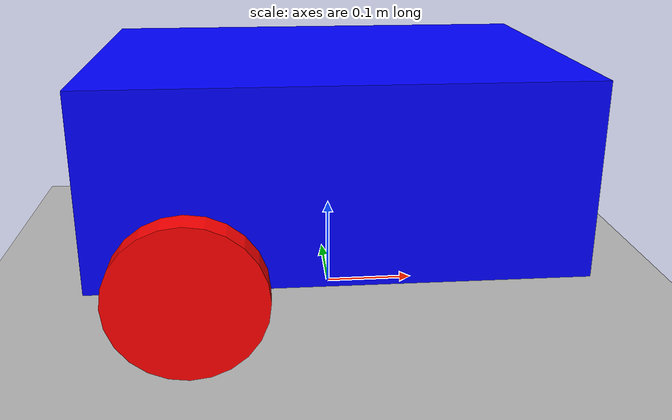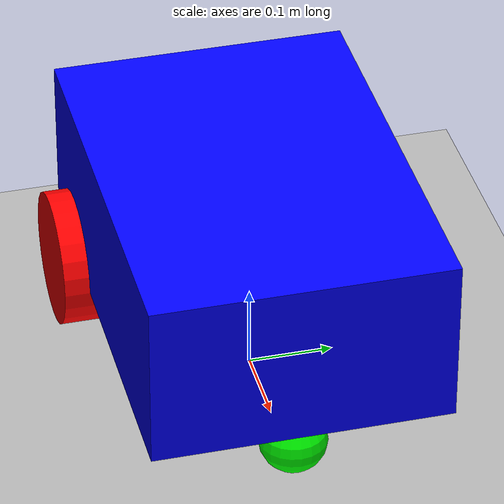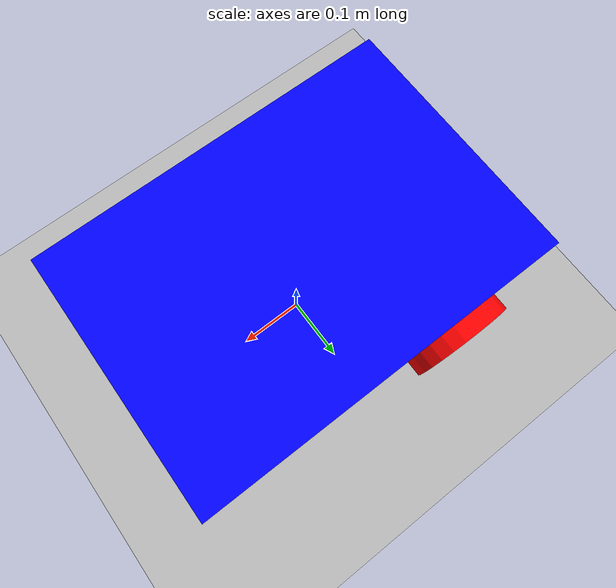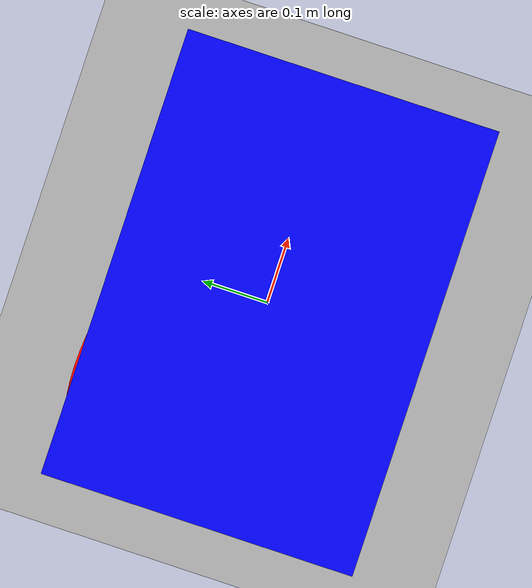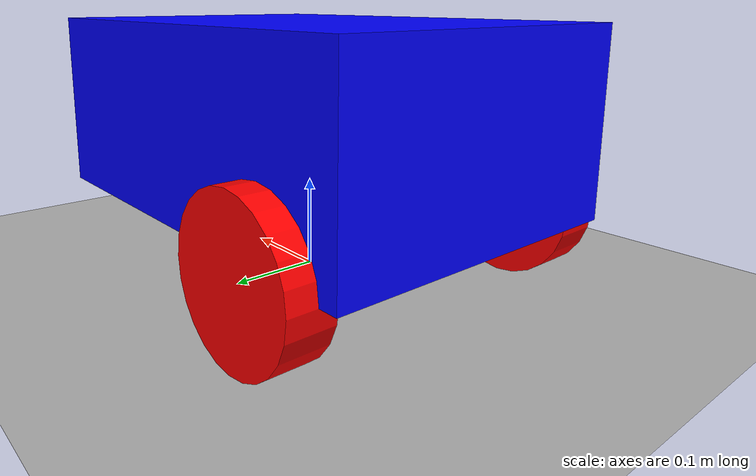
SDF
<sdf version="1.10">
 <world name="simple_room_with_robot">
  <physics name="default_physics" type="dart">
   <max_step_size>0.001</max_step_size>
   <real_time_factor>1.0</real_time_factor>
  </physics>
  <plugin filename="libgz-sim-physics-system.so" name="gz::sim::systems::Physics"/>
  <plugin filename="libgz-sim-user-commands-system.so" name="gz::sim::systems::UserCommands"/>
  <plugin filename="libgz-sim-scene-broadcaster-system.so" name="gz::sim::systems::SceneBroadcaster"/>
  <light name="sun" type="directional">
   <pose>0 0 10 0 0 0</pose>
   <diffuse>0.8 0.8 0.8 1</diffuse>
   <specular>0.2 0.2 0.2 1</specular>
   <attenuation>
    <range>1000</range>
    <constant>0.9</constant>
    <linear>0.01</linear>
    <quadratic>0.001</quadratic>
   </attenuation>
   <direction>-0.5 0.1 -1</direction>
  </light>
  <model name="ground_plane">
   <static>true</static>
   <link name="link">
    <collision name="collision">
     <geometry><plane><normal>0 0 1</normal><size>50 50</size></plane></geometry>
    </collision>
    <visual name="visual">
     <geometry><plane><normal>0 0 1</normal><size>50 50</size></plane></geometry>
     <material><ambient>0.7 0.7 0.7 1</ambient><diffuse>0.7 0.7 0.7 1</diffuse></material>
    </visual>
   </link>
  </model>
  <model name="vehicle_blue" canonical_link="chassis">
   <frame name="lidar_frame" attached_to="chassis"><pose>0.8 0 0.5 0 0 0</pose></frame>
   <link name="chassis">
    <pose>0 0 0.18 0 0 0</pose>
    <inertial>
     <mass>5.0</mass>
     <inertia><ixx>0.03</ixx><ixy>0</ixy><ixz>0</ixz><iyy>0.03</iyy><iyz>0</iyz><izz>0.03</izz></inertia>
    </inertial>
    <visual name="visual">
     <geometry><box><size>0.50 0.35 0.20</size></box></geometry>
     <material>
      <ambient>0.0 0.0 1.0 1</ambient>
      <diffuse>0.0 0.0 1.0 1</diffuse>
      <specular>0.0 0.0 1.0 1</specular>
     </material>
    </visual>
    <collision name="collision"><geometry><box><size>0.50 0.35 0.20</size></box></geometry></collision>
    <sensor name="gpu_lidar" type="gpu_lidar">
     <pose relative_to="lidar_frame">0 0 0 0 0 0</pose>
     <topic>/lidar</topic>
     <update_rate>10</update_rate>
     <ray>
      <scan>
       <horizontal>
        <samples>640</samples>
        <resolution>1</resolution>
        <min_angle>-1.396263</min_angle>
        <max_angle>1.396263</max_angle>
       </horizontal>
       <vertical>
        <samples>1</samples>
        <resolution>0.01</resolution>
        <min_angle>0</min_angle>
        <max_angle>0</max_angle>
       </vertical>
      </scan>
      <range><min>0.08</min><max>10.0</max><resolution>0.01</resolution></range>
     </ray>
     <always_on>1</always_on>
     <visualize>true</visualize>
    </sensor>
   </link>
   <link name="left_wheel">
    <pose relative_to="chassis">-0.15 0.18 -0.10 -1.5707 0 0</pose>
    <inertial>
     <mass>0.5</mass>
     <inertia><ixx>0.001</ixx><ixy>0</ixy><ixz>0</ixz><iyy>0.001</iyy><iyz>0</iyz><izz>0.001</izz></inertia>
    </inertial>
    <visual name="visual">
     <geometry><cylinder><radius>0.08</radius><length>0.05</length></cylinder></geometry>
     <material>
      <ambient>1.0 0.0 0.0 1</ambient>
      <diffuse>1.0 0.0 0.0 1</diffuse>
      <specular>1.0 0.0 0.0 1</specular>
     </material>
    </visual>
    <collision name="collision">
     <geometry><cylinder><radius>0.08</radius><length>0.05</length></cylinder></geometry>
    </collision>
   </link>
   <link name="right_wheel">
    <pose relative_to="chassis">-0.15 -0.18 -0.10 -1.5707 0 0</pose>
    <inertial>
     <mass>0.5</mass>
     <inertia><ixx>0.001</ixx><ixy>0</ixy><ixz>0</ixz><iyy>0.001</iyy><iyz>0</iyz><izz>0.001</izz></inertia>
    </inertial>
    <visual name="visual">
     <geometry><cylinder><radius>0.08</radius><length>0.05</length></cylinder></geometry>
     <material>
      <ambient>1.0 0.0 0.0 1</ambient>
      <diffuse>1.0 0.0 0.0 1</diffuse>
      <specular>1.0 0.0 0.0 1</specular>
     </material>
    </visual>
    <collision name="collision">
     <geometry><cylinder><radius>0.08</radius><length>0.05</length></cylinder></geometry>
    </collision>
   </link>
   <frame name="caster_frame" attached_to="chassis"><pose>0.20 0 -0.14 0 0 0</pose></frame>
   <link name="caster">
    <pose relative_to="caster_frame">0 0 0 0 0 0</pose>
    <inertial>
     <mass>0.2</mass>
     <inertia><ixx>0.0002</ixx><ixy>0</ixy><ixz>0</ixz><iyy>0.0002</iyy><iyz>0</iyz><izz>0.0002</izz></inertia>
    </inertial>
    <visual name="visual">
     <geometry><sphere><radius>0.04</radius></sphere></geometry>
     <material>
      <ambient>0.0 1 0.0 1</ambient>
      <diffuse>0.0 1 0.0 1</diffuse>
      <specular>0.0 1 0.0 1</specular>
     </material>
    </visual>
    <collision name="collision"><geometry><sphere><radius>0.04</radius></sphere></geometry></collision>
   </link>
   <joint name="left_wheel_joint" type="revolute">
    <pose relative_to="left_wheel">0 0 0 0 0 0</pose>
    <parent>chassis</parent>
    <child>left_wheel</child>
    <axis>
     <xyz expressed_in="__model__">0 1 0</xyz>
     <limit><lower>-1.79769e+308</lower><upper>1.79769e+308</upper></limit>
    </axis>
   </joint>
   <joint name="right_wheel_joint" type="revolute">
    <pose relative_to="right_wheel">0 0 0 0 0 0</pose>
    <parent>chassis</parent>
    <child>right_wheel</child>
    <axis>
     <xyz expressed_in="__model__">0 1 0</xyz>
     <limit><lower>-1.79769e+308</lower><upper>1.79769e+308</upper></limit>
    </axis>
   </joint>
   <joint name="caster_wheel" type="ball"><parent>chassis</parent><child>caster</child></joint>
   <plugin filename="libgz-sim-diff-drive-system.so" name="gz::sim::systems::DiffDrive">
    <left_joint>left_wheel_joint</left_joint>
    <right_joint>right_wheel_joint</right_joint>
    <wheel_separation>0.36</wheel_separation>
    <wheel_radius>0.08</wheel_radius>
    <odom_publish_frequency>1</odom_publish_frequency>
    <topic>/cmd_vel</topic>
   </plugin>
  </model>
  <plugin filename="libgz-sim-triggered-publisher-system.so" name="gz::sim::systems::TriggeredPublisher">
   <input type="gz.msgs.Int32" topic="/keyboard/keypress"><match field="data">16777234</match></input>
   <output type="gz.msgs.Twist" topic="/cmd_vel">linear: {x: 0.0}, angular: {z: 0.5}</output>
  </plugin>
  <plugin filename="libgz-sim-triggered-publisher-system.so" name="gz::sim::systems::TriggeredPublisher">
   <input type="gz.msgs.Int32" topic="/keyboard/keypress"><match field="data">16777235</match></input>
   <output type="gz.msgs.Twist" topic="/cmd_vel">linear: {x: 0.5}, angular: {z: 0.0}</output>
  </plugin>
  <plugin filename="libgz-sim-triggered-publisher-system.so" name="gz::sim::systems::TriggeredPublisher">
   <input type="gz.msgs.Int32" topic="/keyboard/keypress"><match field="data">16777236</match></input>
   <output type="gz.msgs.Twist" topic="/cmd_vel">linear: {x: 0.0}, angular: {z: -0.5}</output>
  </plugin>
  <plugin filename="libgz-sim-triggered-publisher-system.so" name="gz::sim::systems::TriggeredPublisher">
   <input type="gz.msgs.Int32" topic="/keyboard/keypress"><match field="data">16777237</match></input>
   <output type="gz.msgs.Twist" topic="/cmd_vel">linear: {x: -0.5}, angular: {z: 0.0}</output>
  </plugin>
  <plugin filename="libgz-sim-sensors-system.so" name="gz::sim::systems::Sensors"/>
  <plugin filename="libgz-sim-imu-system.so" name="gz::sim::systems::Imu"/>
 </world>
</sdf>
